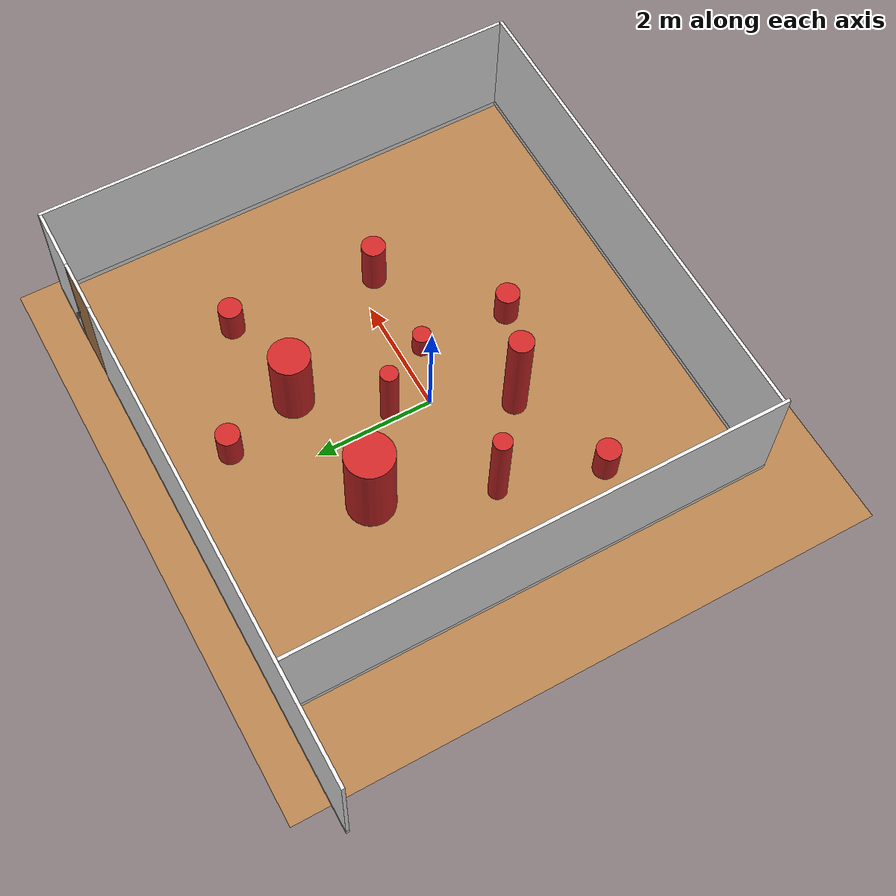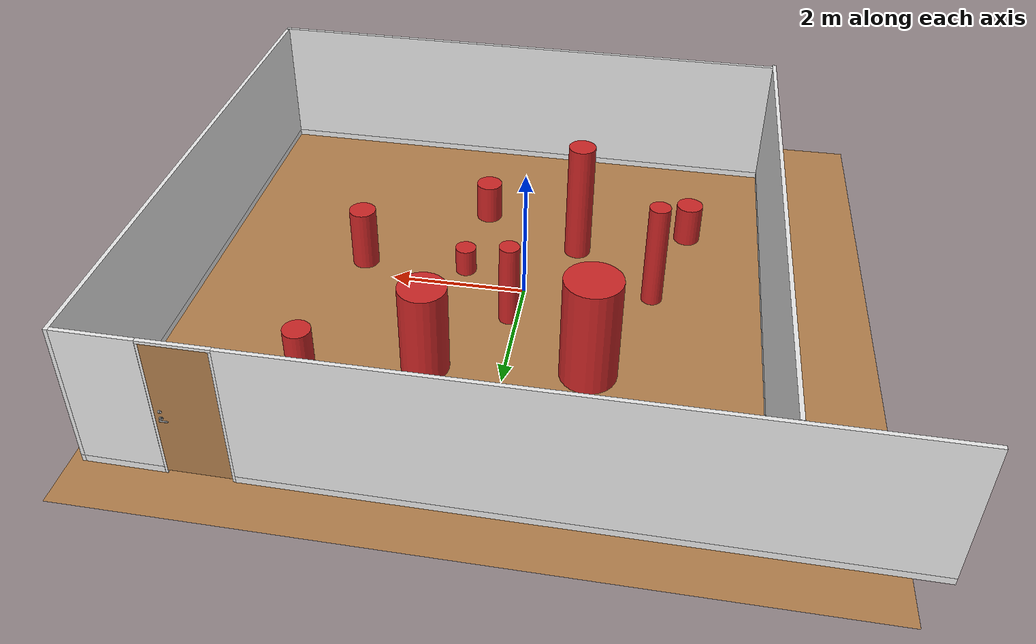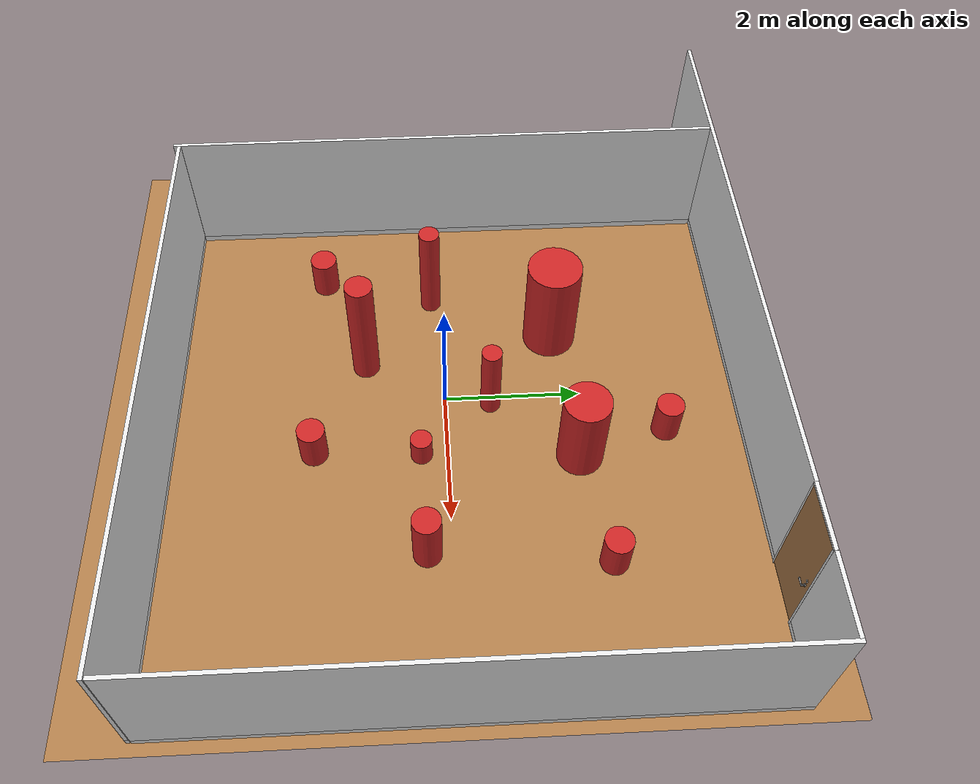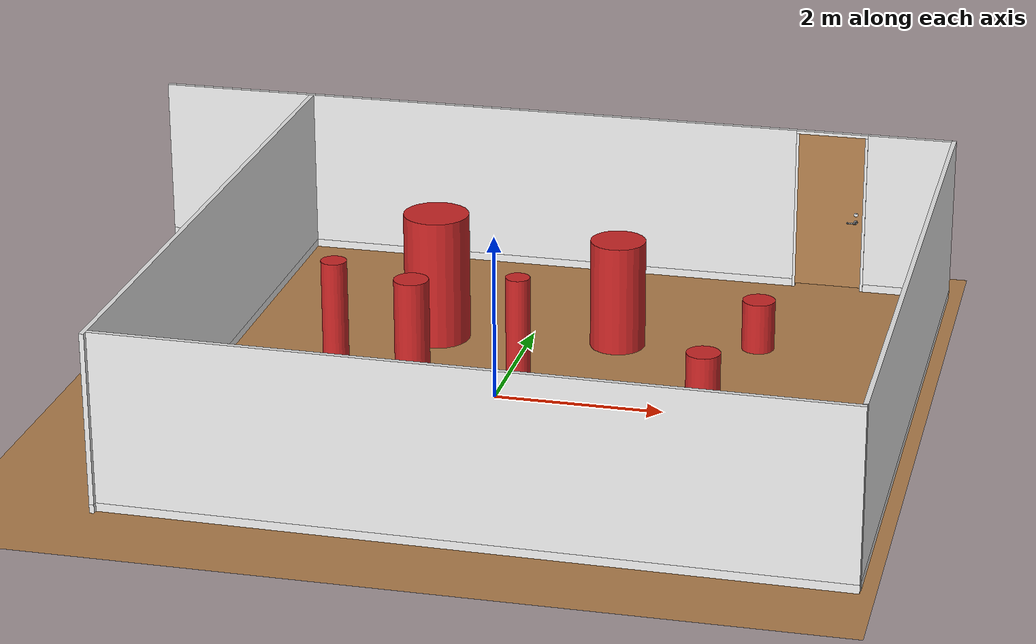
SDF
<sdf version="1.6">
 <world name="default">
  <include><uri>model://sun</uri></include>
  <physics type="ode"/>
  <scene><ambient>0.4 0.4 0.4 1</ambient><background>0.7 0.7 0.7 1</background><shadows>0</shadows></scene>
  <model name="wrc_ground_plane">
   <static>1</static>
   <link name="link">
    <collision name="collision">
     <geometry><plane><normal>0 0 1</normal><size>10 10</size></plane></geometry>
     <surface>
      <contact><collide_bitmask>65535</collide_bitmask></contact>
      <friction><ode><mu>100</mu><mu2>50</mu2></ode></friction>
     </surface>
    </collision>
    <visual name="visual">
     <cast_shadows>0</cast_shadows>
     <geometry><plane><normal>0 0 1</normal><size>10 10</size></plane></geometry>
     <material>
      <script><uri>model://wrc_ground_plane/materials/wood.material</uri><name>WRS/WoodFloor</name></script>
     </material>
    </visual>
   </link>
  </model>
  <magnetic_field>6e-06 2.3e-05 -4.2e-05</magnetic_field>
  <atmosphere type="adiabatic"/>
  <spherical_coordinates>
   <surface_model>EARTH_WGS84</surface_model>
   <latitude_deg>0</latitude_deg>
   <longitude_deg>0</longitude_deg>
   <elevation>0</elevation>
   <heading_deg>0</heading_deg>
  </spherical_coordinates>
  <model name="full_wall_55_8295_2090">
   <link name="link">
    <inertial>
     <mass>50</mass>
     <inertia><ixx>1</ixx><ixy>0</ixy><ixz>0</ixz><iyy>1</iyy><iyz>0</iyz><izz>1</izz></inertia>
    </inertial>
    <visual name="bottom_frame">
     <pose>0 0 0.05 0 -0 0</pose>
     <geometry><box><size>0.055 8.295 0.1</size></box></geometry>
     <material>
      <script><uri>model://base_materials/color/scripts</uri><name>hsr_color/white</name></script>
     </material>
    </visual>
    <collision name="collision_bottom_frame">
     <pose>0 0 0.05 0 -0 0</pose>
     <geometry><box><size>0.055 8.295 0.1</size></box></geometry>
    </collision>
    <visual name="wall">
     <pose>0 0 1.095 0 -0 0</pose>
     <geometry><box><size>0.055 8.295 1.99</size></box></geometry>
     <material>
      <script>
       <uri>model://base_materials/wall/scripts</uri>
       <uri>model://base_materials/wall/textures</uri>
       <name>wall/white_noise</name>
      </script>
     </material>
    </visual>
    <collision name="collision_wall">
     <pose>0 0 1.095 0 -0 0</pose>
     <geometry><box><size>0.055 8.295 1.99</size></box></geometry>
    </collision>
    <velocity_decay><linear>0</linear><angular>0</angular></velocity_decay>
   </link>
   <static>1</static>
   <pose>4.81252 0.172211 0 0 -0 0</pose>
  </model>
  <model name="full_wall_55_8295_2090_clone">
   <link name="link">
    <inertial>
     <mass>50</mass>
     <inertia><ixx>1</ixx><ixy>0</ixy><ixz>0</ixz><iyy>1</iyy><iyz>0</iyz><izz>1</izz></inertia>
    </inertial>
    <visual name="bottom_frame">
     <pose>0 0 0.05 0 -0 0</pose>
     <geometry><box><size>0.055 8.295 0.1</size></box></geometry>
     <material>
      <script><uri>model://base_materials/color/scripts</uri><name>hsr_color/white</name></script>
     </material>
    </visual>
    <collision name="collision_bottom_frame">
     <pose>0 0 0.05 0 -0 0</pose>
     <geometry><box><size>0.055 8.295 0.1</size></box></geometry>
    </collision>
    <visual name="wall">
     <pose>0 0 1.095 0 -0 0</pose>
     <geometry><box><size>0.055 8.295 1.99</size></box></geometry>
     <material>
      <script>
       <uri>model://base_materials/wall/scripts</uri>
       <uri>model://base_materials/wall/textures</uri>
       <name>wall/white_noise</name>
      </script>
     </material>
    </visual>
    <collision name="collision_wall">
     <pose>0 0 1.095 0 -0 0</pose>
     <geometry><box><size>0.055 8.295 1.99</size></box></geometry>
    </collision>
    <velocity_decay><linear>0</linear><angular>0</angular></velocity_decay>
   </link>
   <static>1</static>
   <pose>-1.30065 4.31927 0 0 0 -1.57365</pose>
  </model>
  <model name="full_wall_55_900_2090">
   <link name="link">
    <inertial>
     <mass>50</mass>
     <inertia><ixx>1</ixx><ixy>0</ixy><ixz>0</ixz><iyy>1</iyy><iyz>0</iyz><izz>1</izz></inertia>
    </inertial>
    <visual name="bottom_frame">
     <pose>0 0 0.05 0 -0 0</pose>
     <geometry><box><size>0.055 1.04 0.1</size></box></geometry>
     <material>
      <script><uri>model://base_materials/color/scripts</uri><name>hsr_color/white</name></script>
     </material>
    </visual>
    <collision name="collision_bottom_frame">
     <pose>0 0 0.05 0 -0 0</pose>
     <geometry><box><size>0.055 1.04 0.1</size></box></geometry>
    </collision>
    <visual name="wall">
     <pose>0 0 1.095 0 -0 0</pose>
     <geometry><box><size>0.055 1.04 1.99</size></box></geometry>
     <material>
      <script>
       <uri>model://base_materials/wall/scripts</uri>
       <uri>model://base_materials/wall/textures</uri>
       <name>wall/white_noise</name>
      </script>
     </material>
    </visual>
    <collision name="collision_wall">
     <pose>0 0 1.095 0 -0 0</pose>
     <geometry><box><size>0.055 1.04 1.99</size></box></geometry>
    </collision>
    <velocity_decay><linear>0</linear><angular>0</angular></velocity_decay>
   </link>
   <static>1</static>
   <pose>4.26859 4.29665 0 0 -0 1.56253</pose>
  </model>
  <model name="full_wall_55_8295_2090_0">
   <link name="link">
    <inertial>
     <mass>50</mass>
     <inertia><ixx>1</ixx><ixy>0</ixy><ixz>0</ixz><iyy>1</iyy><iyz>0</iyz><izz>1</izz></inertia>
    </inertial>
    <visual name="bottom_frame">
     <pose>0 0 0.05 0 -0 0</pose>
     <geometry><box><size>0.055 8.295 0.1</size></box></geometry>
     <material>
      <script><uri>model://base_materials/color/scripts</uri><name>hsr_color/white</name></script>
     </material>
    </visual>
    <collision name="collision_bottom_frame">
     <pose>0 0 0.05 0 -0 0</pose>
     <geometry><box><size>0.055 8.295 0.1</size></box></geometry>
    </collision>
    <visual name="wall">
     <pose>0 0 1.095 0 -0 0</pose>
     <geometry><box><size>0.055 8.295 1.99</size></box></geometry>
     <material>
      <script>
       <uri>model://base_materials/wall/scripts</uri>
       <uri>model://base_materials/wall/textures</uri>
       <name>wall/white_noise</name>
      </script>
     </material>
    </visual>
    <collision name="collision_wall">
     <pose>0 0 1.095 0 -0 0</pose>
     <geometry><box><size>0.055 8.295 1.99</size></box></geometry>
    </collision>
    <velocity_decay><linear>0</linear><angular>0</angular></velocity_decay>
   </link>
   <static>1</static>
   <pose>0.687285 -3.96616 0 0 0 -1.58277</pose>
  </model>
  <model name="full_wall_55_8295_2090_1">
   <link name="link">
    <inertial>
     <mass>50</mass>
     <inertia><ixx>1</ixx><ixy>0</ixy><ixz>0</ixz><iyy>1</iyy><iyz>0</iyz><izz>1</izz></inertia>
    </inertial>
    <visual name="bottom_frame">
     <pose>0 0 0.05 0 -0 0</pose>
     <geometry><box><size>0.055 8.295 0.1</size></box></geometry>
     <material>
      <script><uri>model://base_materials/color/scripts</uri><name>hsr_color/white</name></script>
     </material>
    </visual>
    <collision name="collision_bottom_frame">
     <pose>0 0 0.05 0 -0 0</pose>
     <geometry><box><size>0.055 8.295 0.1</size></box></geometry>
    </collision>
    <visual name="wall">
     <pose>0 0 1.095 0 -0 0</pose>
     <geometry><box><size>0.055 8.295 1.99</size></box></geometry>
     <material>
      <script>
       <uri>model://base_materials/wall/scripts</uri>
       <uri>model://base_materials/wall/textures</uri>
       <name>wall/white_noise</name>
      </script>
     </material>
    </visual>
    <collision name="collision_wall">
     <pose>0 0 1.095 0 -0 0</pose>
     <geometry><box><size>0.055 8.295 1.99</size></box></geometry>
    </collision>
    <velocity_decay><linear>0</linear><angular>0</angular></velocity_decay>
   </link>
   <static>1</static>
   <pose>-3.4877 0.144746 0 0 -0 0</pose>
  </model>
  <model name="door_55_900_2090">
   <link name="link">
    <pose>0 0.45 0 0 -0 0</pose>
    <inertial>
     <mass>50</mass>
     <inertia><ixx>1</ixx><ixy>0</ixy><ixz>0</ixz><iyy>1</iyy><iyz>0</iyz><izz>1</izz></inertia>
    </inertial>
    <visual name="door">
     <pose>0 0 1.05 0 -0 0</pose>
     <geometry><box><size>0.055 0.83 2</size></box></geometry>
     <material>
      <script><uri>model://base_materials/wood/scripts/wood.material</uri><name>base_materials/wood</name></script>
     </material>
    </visual>
    <collision name="collision_door">
     <pose>0 0 1.05 0 -0 0</pose>
     <geometry><box><size>0.055 0.83 2</size></box></geometry>
    </collision>
    <visual name="right_frame">
     <pose>0 0.4325 1.025 0 -0 0</pose>
     <geometry><box><size>0.055 0.035 2.05</size></box></geometry>
     <material>
      <script><uri>model://base_materials/color/scripts</uri><name>hsr_color/white</name></script>
     </material>
    </visual>
    <collision name="collision_right_frame">
     <pose>0 0.4325 1.025 0 -0 0</pose>
     <geometry><box><size>0.055 0.035 2.05</size></box></geometry>
    </collision>
    <visual name="left_frame">
     <pose>0 -0.4325 1.025 0 -0 0</pose>
     <geometry><box><size>0.055 0.035 2.05</size></box></geometry>
     <material>
      <script><uri>model://base_materials/color/scripts</uri><name>hsr_color/white</name></script>
     </material>
    </visual>
    <collision name="collision_left_frame">
     <pose>0 -0.4325 1.025 0 -0 0</pose>
     <geometry><box><size>0.055 0.035 2.05</size></box></geometry>
    </collision>
    <visual name="top_frame">
     <pose>0 0 2.07 0 -0 0</pose>
     <geometry><box><size>0.055 0.9 0.04</size></box></geometry>
     <material>
      <script><uri>model://base_materials/color/scripts</uri><name>hsr_color/white</name></script>
     </material>
    </visual>
    <collision name="collision_top_frame">
     <pose>0 0 2.07 0 -0 0</pose>
     <geometry><box><size>0.055 0.9 0.04</size></box></geometry>
    </collision>
    <visual name="handle_front">
     <pose>0.0775 0.285 0.93 1.5708 -0 0</pose>
     <geometry><cylinder><radius>0.01</radius><length>0.1</length></cylinder></geometry>
     <material>
      <script><uri>model://base_materials/color/scripts</uri><name>hsr_color/grey</name></script>
     </material>
    </visual>
    <collision name="collision_handle_front">
     <pose>0.0775 0.285 0.93 1.5708 -0 0</pose>
     <geometry><cylinder><radius>0.01</radius><length>0.1</length></cylinder></geometry>
    </collision>
    <visual name="handle_back">
     <pose>-0.0775 0.285 0.93 1.5708 -0 0</pose>
     <geometry><cylinder><radius>0.01</radius><length>0.1</length></cylinder></geometry>
     <material>
      <script><uri>model://base_materials/color/scripts</uri><name>hsr_color/grey</name></script>
     </material>
    </visual>
    <collision name="collision_handle_back">
     <pose>-0.0775 0.285 0.93 1.5708 -0 0</pose>
     <geometry><cylinder><radius>0.01</radius><length>0.1</length></cylinder></geometry>
    </collision>
    <visual name="handle_center1">
     <pose>0 0.335 0.93 3.14159 1.57079 3.14159</pose>
     <geometry><cylinder><radius>0.01</radius><length>0.155</length></cylinder></geometry>
     <material>
      <script><uri>model://base_materials/color/scripts</uri><name>hsr_color/grey</name></script>
     </material>
    </visual>
    <collision name="collision_center1">
     <pose>0 0.335 0.93 3.14159 1.57079 3.14159</pose>
     <geometry><cylinder><radius>0.01</radius><length>0.155</length></cylinder></geometry>
    </collision>
    <visual name="handle_center2">
     <pose>0 0.335 0.93 3.14159 1.57079 3.14159</pose>
     <geometry><cylinder><radius>0.025</radius><length>0.075</length></cylinder></geometry>
     <material>
      <script><uri>model://base_materials/color/scripts</uri><name>hsr_color/grey</name></script>
     </material>
    </visual>
    <collision name="collision_center1">
     <pose>0 0.335 0.93 3.14159 1.57079 3.14159</pose>
     <geometry><cylinder><radius>0.025</radius><length>0.075</length></cylinder></geometry>
    </collision>
    <visual name="handle_front_right_corner">
     <pose>0.0775 0.335 0.93 0 -0 0</pose>
     <geometry><sphere><radius>0.01</radius></sphere></geometry>
     <material>
      <script><uri>model://base_materials/color/scripts</uri><name>hsr_color/grey</name></script>
     </material>
    </visual>
    <collision name="collision_handle_front_right_corner">
     <pose>0.0775 0.335 0.93 0 -0 0</pose>
     <geometry><sphere><radius>0.01</radius></sphere></geometry>
    </collision>
    <visual name="handle_front_left_corner">
     <pose>0.0775 0.235 0.93 0 -0 0</pose>
     <geometry><sphere><radius>0.01</radius></sphere></geometry>
     <material>
      <script><uri>model://base_materials/color/scripts</uri><name>hsr_color/grey</name></script>
     </material>
    </visual>
    <collision name="collision_handle_front_left_corner">
     <pose>0.0775 0.235 0.93 0 -0 0</pose>
     <geometry><sphere><radius>0.01</radius></sphere></geometry>
    </collision>
    <visual name="handle_back_right_corner">
     <pose>-0.0775 0.335 0.93 0 -0 0</pose>
     <geometry><sphere><radius>0.01</radius></sphere></geometry>
     <material>
      <script><uri>model://base_materials/color/scripts</uri><name>hsr_color/grey</name></script>
     </material>
    </visual>
    <collision name="collision_handle_back_right_corner">
     <pose>-0.0775 0.335 0.93 0 -0 0</pose>
     <geometry><sphere><radius>0.01</radius></sphere></geometry>
    </collision>
    <visual name="handle_back_left_corner">
     <pose>-0.0775 0.235 0.93 0 -0 0</pose>
     <geometry><sphere><radius>0.01</radius></sphere></geometry>
     <material>
      <script><uri>model://base_materials/color/scripts</uri><name>hsr_color/white</name></script>
     </material>
    </visual>
    <collision name="collision_handle_back_left_corner">
     <pose>-0.0775 0.235 0.93 0 -0 0</pose>
     <geometry><sphere><radius>0.01</radius></sphere></geometry>
    </collision>
    <visual name="handle_lock1">
     <pose>0 0.335 1.03 0 -0 0</pose>
     <geometry><box><size>0.075 0.005 0.04</size></box></geometry>
     <material>
      <script><uri>model://base_materials/color/scripts</uri><name>hsr_color/white</name></script>
     </material>
    </visual>
    <collision name="collision_handle_lock1">
     <pose>0 0.335 1.03 0 -0 0</pose>
     <geometry><box><size>0.075 0.005 0.04</size></box></geometry>
    </collision>
    <visual name="handle_lock2">
     <pose>0 0.335 1.03 3.14159 1.57079 3.14159</pose>
     <geometry><cylinder><radius>0.025</radius><length>0.065</length></cylinder></geometry>
     <material>
      <script><uri>model://base_materials/color/scripts</uri><name>hsr_color/white</name></script>
     </material>
    </visual>
    <collision name="collision_handle_lock1">
     <pose>0 0.335 1.03 3.14159 1.57079 3.14159</pose>
     <geometry><cylinder><radius>0.025</radius><length>0.065</length></cylinder></geometry>
    </collision>
    <velocity_decay><linear>0</linear><angular>0</angular></velocity_decay>
   </link>
   <static>1</static>
   <pose>2.84759 4.30281 0 0 0 -1.57383</pose>
  </model>
  <model name="unit_cylinder_0">
   <link name="link">
    <inertial>
     <mass>1</mass>
     <inertia><ixx>0.145833</ixx><ixy>0</ixy><ixz>0</ixz><iyy>0.145833</iyy><iyz>0</iyz><izz>0.125</izz></inertia>
    </inertial>
    <visual name="visual">
     <geometry><cylinder><radius>0.399602</radius><length>1.59857</length></cylinder></geometry>
     <material>
      <script><name>Gazebo/Red</name><uri>file://media/materials/scripts/gazebo.material</uri></script>
      <shader type="pixel"/>
     </material>
     <cast_shadows>0</cast_shadows>
    </visual>
    <collision name="collision">
     <geometry><cylinder><radius>0.399602</radius><length>1.59857</length></cylinder></geometry>
     <surface>
      <friction>
       <ode><mu>1</mu><mu2>1</mu2><fdir1>0 0 0</fdir1><slip1>0</slip1><slip2>0</slip2></ode>
       <torsional>
        <coefficient>1</coefficient>
        <patch_radius>0</patch_radius>
        <surface_radius>0</surface_radius>
        <use_patch_radius>1</use_patch_radius>
        <ode><slip>0</slip></ode>
       </torsional>
      </friction>
      <bounce><restitution_coefficient>0</restitution_coefficient><threshold>1e+06</threshold></bounce>
      <contact>
       <collide_without_contact>0</collide_without_contact>
       <collide_without_contact_bitmask>1</collide_without_contact_bitmask>
       <collide_bitmask>1</collide_bitmask>
       <ode>
        <soft_cfm>0</soft_cfm>
        <soft_erp>0.2</soft_erp>
        <kp>1e+13</kp>
        <kd>1</kd>
        <max_vel>0.01</max_vel>
        <min_depth>0</min_depth>
       </ode>
       <bullet>
        <split_impulse>1</split_impulse>
        <split_impulse_penetration_threshold>-0.01</split_impulse_penetration_threshold>
        <soft_cfm>0</soft_cfm>
        <soft_erp>0.2</soft_erp>
        <kp>1e+13</kp>
        <kd>1</kd>
       </bullet>
      </contact>
     </surface>
    </collision>
   </link>
   <static>0</static>
   <pose>-1.12873 1.66165 0.79928 0 -0 1.2e-05</pose>
  </model>
  <model name="unit_cylinder_1">
   <link name="link">
    <inertial>
     <mass>1</mass>
     <inertia><ixx>0.145833</ixx><ixy>0</ixy><ixz>0</ixz><iyy>0.145833</iyy><iyz>0</iyz><izz>0.125</izz></inertia>
    </inertial>
    <visual name="visual">
     <geometry><cylinder><radius>0.152824</radius><length>1.60987</length></cylinder></geometry>
     <material>
      <script><name>Gazebo/Red</name><uri>file://media/materials/scripts/gazebo.material</uri></script>
      <shader type="pixel"/>
     </material>
     <cast_shadows>0</cast_shadows>
    </visual>
    <collision name="collision">
     <geometry><cylinder><radius>0.152824</radius><length>1.60987</length></cylinder></geometry>
     <surface>
      <friction>
       <ode><mu>1</mu><mu2>1</mu2><fdir1>0 0 0</fdir1><slip1>0</slip1><slip2>0</slip2></ode>
       <torsional>
        <coefficient>1</coefficient>
        <patch_radius>0</patch_radius>
        <surface_radius>0</surface_radius>
        <use_patch_radius>1</use_patch_radius>
        <ode><slip>0</slip></ode>
       </torsional>
      </friction>
      <bounce><restitution_coefficient>0</restitution_coefficient><threshold>1e+06</threshold></bounce>
      <contact>
       <collide_without_contact>0</collide_without_contact>
       <collide_without_contact_bitmask>1</collide_without_contact_bitmask>
       <collide_bitmask>1</collide_bitmask>
       <ode>
        <soft_cfm>0</soft_cfm>
        <soft_erp>0.2</soft_erp>
        <kp>1e+13</kp>
        <kd>1</kd>
        <max_vel>0.01</max_vel>
        <min_depth>0</min_depth>
       </ode>
       <bullet>
        <split_impulse>1</split_impulse>
        <split_impulse_penetration_threshold>-0.01</split_impulse_penetration_threshold>
        <soft_cfm>0</soft_cfm>
        <soft_erp>0.2</soft_erp>
        <kp>1e+13</kp>
        <kd>1</kd>
       </bullet>
      </contact>
     </surface>
    </collision>
   </link>
   <static>0</static>
   <pose>-1.87826 -0.151344 0.80493 -0 -0 -0.00015</pose>
  </model>
  <model name="unit_cylinder_2">
   <link name="link">
    <inertial>
     <mass>1</mass>
     <inertia><ixx>0.145833</ixx><ixy>0</ixy><ixz>0</ixz><iyy>0.145833</iyy><iyz>0</iyz><izz>0.125</izz></inertia>
    </inertial>
    <visual name="visual">
     <geometry><cylinder><radius>0.335498</radius><length>1.35309</length></cylinder></geometry>
     <material>
      <script><name>Gazebo/Red</name><uri>file://media/materials/scripts/gazebo.material</uri></script>
      <shader type="pixel"/>
     </material>
     <cast_shadows>0</cast_shadows>
    </visual>
    <collision name="collision">
     <geometry><cylinder><radius>0.335498</radius><length>1.35309</length></cylinder></geometry>
     <surface>
      <friction>
       <ode><mu>1</mu><mu2>1</mu2><fdir1>0 0 0</fdir1><slip1>0</slip1><slip2>0</slip2></ode>
       <torsional>
        <coefficient>1</coefficient>
        <patch_radius>0</patch_radius>
        <surface_radius>0</surface_radius>
        <use_patch_radius>1</use_patch_radius>
        <ode><slip>0</slip></ode>
       </torsional>
      </friction>
      <bounce><restitution_coefficient>0</restitution_coefficient><threshold>1e+06</threshold></bounce>
      <contact>
       <collide_without_contact>0</collide_without_contact>
       <collide_without_contact_bitmask>1</collide_without_contact_bitmask>
       <collide_bitmask>1</collide_bitmask>
       <ode>
        <soft_cfm>0</soft_cfm>
        <soft_erp>0.2</soft_erp>
        <kp>1e+13</kp>
        <kd>1</kd>
        <max_vel>0.01</max_vel>
        <min_depth>0</min_depth>
       </ode>
       <bullet>
        <split_impulse>1</split_impulse>
        <split_impulse_penetration_threshold>-0.01</split_impulse_penetration_threshold>
        <soft_cfm>0</soft_cfm>
        <soft_erp>0.2</soft_erp>
        <kp>1e+13</kp>
        <kd>1</kd>
       </bullet>
      </contact>
     </surface>
    </collision>
   </link>
   <static>0</static>
   <pose>1.07206 1.88769 0.676536 0 -0 0</pose>
  </model>
  <model name="unit_cylinder_3">
   <link name="link">
    <inertial>
     <mass>1</mass>
     <inertia><ixx>0.145833</ixx><ixy>0</ixy><ixz>0</ixz><iyy>0.145833</iyy><iyz>0</iyz><izz>0.125</izz></inertia>
    </inertial>
    <visual name="visual">
     <geometry><cylinder><radius>0.155954</radius><length>0.421588</length></cylinder></geometry>
     <material>
      <script><name>Gazebo/Red</name><uri>file://media/materials/scripts/gazebo.material</uri></script>
      <shader type="pixel"/>
     </material>
     <cast_shadows>0</cast_shadows>
    </visual>
    <collision name="collision">
     <geometry><cylinder><radius>0.155954</radius><length>0.421588</length></cylinder></geometry>
     <surface>
      <friction>
       <ode><mu>1</mu><mu2>1</mu2><fdir1>0 0 0</fdir1><slip1>0</slip1><slip2>0</slip2></ode>
       <torsional>
        <coefficient>1</coefficient>
        <patch_radius>0</patch_radius>
        <surface_radius>0</surface_radius>
        <use_patch_radius>1</use_patch_radius>
        <ode><slip>0</slip></ode>
       </torsional>
      </friction>
      <bounce><restitution_coefficient>0</restitution_coefficient><threshold>1e+06</threshold></bounce>
      <contact>
       <collide_without_contact>0</collide_without_contact>
       <collide_without_contact_bitmask>1</collide_without_contact_bitmask>
       <collide_bitmask>1</collide_bitmask>
       <ode>
        <soft_cfm>0</soft_cfm>
        <soft_erp>0.2</soft_erp>
        <kp>1e+13</kp>
        <kd>1</kd>
        <max_vel>0.01</max_vel>
        <min_depth>0</min_depth>
       </ode>
       <bullet>
        <split_impulse>1</split_impulse>
        <split_impulse_penetration_threshold>-0.01</split_impulse_penetration_threshold>
        <soft_cfm>0</soft_cfm>
        <soft_erp>0.2</soft_erp>
        <kp>1e+13</kp>
        <kd>1</kd>
       </bullet>
      </contact>
     </surface>
    </collision>
   </link>
   <static>0</static>
   <pose>0.954456 -0.376954 0.210793 -2e-06 2e-06 1e-06</pose>
  </model>
  <model name="unit_cylinder_4">
   <link name="link">
    <inertial>
     <mass>1</mass>
     <inertia><ixx>0.145833</ixx><ixy>0</ixy><ixz>0</ixz><iyy>0.145833</iyy><iyz>0</iyz><izz>0.125</izz></inertia>
    </inertial>
    <visual name="visual">
     <geometry><cylinder><radius>0.199818</radius><length>1.87409</length></cylinder></geometry>
     <material>
      <script><name>Gazebo/Red</name><uri>file://media/materials/scripts/gazebo.material</uri></script>
      <shader type="pixel"/>
     </material>
     <cast_shadows>0</cast_shadows>
    </visual>
    <collision name="collision">
     <geometry><cylinder><radius>0.199818</radius><length>1.87409</length></cylinder></geometry>
     <surface>
      <friction>
       <ode><mu>1</mu><mu2>1</mu2><fdir1>0 0 0</fdir1><slip1>0</slip1><slip2>0</slip2></ode>
       <torsional>
        <coefficient>1</coefficient>
        <patch_radius>0</patch_radius>
        <surface_radius>0</surface_radius>
        <use_patch_radius>1</use_patch_radius>
        <ode><slip>0</slip></ode>
       </torsional>
      </friction>
      <bounce><restitution_coefficient>0</restitution_coefficient><threshold>1e+06</threshold></bounce>
      <contact>
       <collide_without_contact>0</collide_without_contact>
       <collide_without_contact_bitmask>1</collide_without_contact_bitmask>
       <collide_bitmask>1</collide_bitmask>
       <ode>
        <soft_cfm>0</soft_cfm>
        <soft_erp>0.2</soft_erp>
        <kp>1e+13</kp>
        <kd>1</kd>
        <max_vel>0.01</max_vel>
        <min_depth>0</min_depth>
       </ode>
       <bullet>
        <split_impulse>1</split_impulse>
        <split_impulse_penetration_threshold>-0.01</split_impulse_penetration_threshold>
        <soft_cfm>0</soft_cfm>
        <soft_erp>0.2</soft_erp>
        <kp>1e+13</kp>
        <kd>1</kd>
       </bullet>
      </contact>
     </surface>
    </collision>
   </link>
   <static>0</static>
   <pose>-0.663952 -1.17271 0.937041 0 0 -2e-06</pose>
  </model>
  <model name="unit_cylinder_5">
   <link name="link">
    <inertial>
     <mass>1</mass>
     <inertia><ixx>0.145833</ixx><ixy>0</ixy><ixz>0</ixz><iyy>0.145833</iyy><iyz>0</iyz><izz>0.125</izz></inertia>
    </inertial>
    <visual name="visual">
     <geometry><cylinder><radius>0.146496</radius><length>1.26347</length></cylinder></geometry>
     <material>
      <script><name>Gazebo/Red</name><uri>file://media/materials/scripts/gazebo.material</uri></script>
      <shader type="pixel"/>
     </material>
     <cast_shadows>0</cast_shadows>
    </visual>
    <collision name="collision">
     <geometry><cylinder><radius>0.146496</radius><length>1.26347</length></cylinder></geometry>
     <surface>
      <friction>
       <ode><mu>1</mu><mu2>1</mu2><fdir1>0 0 0</fdir1><slip1>0</slip1><slip2>0</slip2></ode>
       <torsional>
        <coefficient>1</coefficient>
        <patch_radius>0</patch_radius>
        <surface_radius>0</surface_radius>
        <use_patch_radius>1</use_patch_radius>
        <ode><slip>0</slip></ode>
       </torsional>
      </friction>
      <bounce><restitution_coefficient>0</restitution_coefficient><threshold>1e+06</threshold></bounce>
      <contact>
       <collide_without_contact>0</collide_without_contact>
       <collide_without_contact_bitmask>1</collide_without_contact_bitmask>
       <collide_bitmask>1</collide_bitmask>
       <ode>
        <soft_cfm>0</soft_cfm>
        <soft_erp>0.2</soft_erp>
        <kp>1e+13</kp>
        <kd>1</kd>
        <max_vel>0.01</max_vel>
        <min_depth>0</min_depth>
       </ode>
       <bullet>
        <split_impulse>1</split_impulse>
        <split_impulse_penetration_threshold>-0.01</split_impulse_penetration_threshold>
        <soft_cfm>0</soft_cfm>
        <soft_erp>0.2</soft_erp>
        <kp>1e+13</kp>
        <kd>1</kd>
       </bullet>
      </contact>
     </surface>
    </collision>
   </link>
   <static>0</static>
   <pose>0.121096 0.664123 0.631727 -0 -0 -0.000261</pose>
  </model>
  <model name="unit_cylinder_3_clone">
   <link name="link">
    <inertial>
     <mass>1</mass>
     <inertia><ixx>0.145833</ixx><ixy>0</ixy><ixz>0</ixz><iyy>0.145833</iyy><iyz>0</iyz><izz>0.125</izz></inertia>
    </inertial>
    <visual name="visual">
     <geometry><cylinder><radius>0.199818</radius><length>0.942789</length></cylinder></geometry>
     <material>
      <script><name>Gazebo/Red</name><uri>file://media/materials/scripts/gazebo.material</uri></script>
      <shader type="pixel"/>
     </material>
     <cast_shadows>0</cast_shadows>
    </visual>
    <collision name="collision">
     <geometry><cylinder><radius>0.199818</radius><length>0.942789</length></cylinder></geometry>
     <surface>
      <friction>
       <ode><mu>1</mu><mu2>1</mu2><fdir1>0 0 0</fdir1><slip1>0</slip1><slip2>0</slip2></ode>
       <torsional>
        <coefficient>1</coefficient>
        <patch_radius>0</patch_radius>
        <surface_radius>0</surface_radius>
        <use_patch_radius>1</use_patch_radius>
        <ode><slip>0</slip></ode>
       </torsional>
      </friction>
      <bounce><restitution_coefficient>0</restitution_coefficient><threshold>1e+06</threshold></bounce>
      <contact>
       <collide_without_contact>0</collide_without_contact>
       <collide_without_contact_bitmask>1</collide_without_contact_bitmask>
       <collide_bitmask>1</collide_bitmask>
       <ode>
        <soft_cfm>0</soft_cfm>
        <soft_erp>0.2</soft_erp>
        <kp>1e+13</kp>
        <kd>1</kd>
        <max_vel>0.01</max_vel>
        <min_depth>0</min_depth>
       </ode>
       <bullet>
        <split_impulse>1</split_impulse>
        <split_impulse_penetration_threshold>-0.01</split_impulse_penetration_threshold>
        <soft_cfm>0</soft_cfm>
        <soft_erp>0.2</soft_erp>
        <kp>1e+13</kp>
        <kd>1</kd>
       </bullet>
      </contact>
     </surface>
    </collision>
   </link>
   <static>0</static>
   <pose>2.52367 -0.340921 0.471393 0 0 -2.8e-05</pose>
  </model>
  <model name="unit_cylinder_3_clone_0">
   <link name="link">
    <inertial>
     <mass>1</mass>
     <inertia><ixx>0.145833</ixx><ixy>0</ixy><ixz>0</ixz><iyy>0.145833</iyy><iyz>0</iyz><izz>0.125</izz></inertia>
    </inertial>
    <visual name="visual">
     <geometry><cylinder><radius>0.199818</radius><length>0.6279</length></cylinder></geometry>
     <material>
      <script><name>Gazebo/Red</name><uri>file://media/materials/scripts/gazebo.material</uri></script>
      <shader type="pixel"/>
     </material>
     <cast_shadows>0</cast_shadows>
    </visual>
    <collision name="collision">
     <geometry><cylinder><radius>0.199818</radius><length>0.6279</length></cylinder></geometry>
     <surface>
      <friction>
       <ode><mu>1</mu><mu2>1</mu2><fdir1>0 0 0</fdir1><slip1>0</slip1><slip2>0</slip2></ode>
       <torsional>
        <coefficient>1</coefficient>
        <patch_radius>0</patch_radius>
        <surface_radius>0</surface_radius>
        <use_patch_radius>1</use_patch_radius>
        <ode><slip>0</slip></ode>
       </torsional>
      </friction>
      <bounce><restitution_coefficient>0</restitution_coefficient><threshold>1e+06</threshold></bounce>
      <contact>
       <collide_without_contact>0</collide_without_contact>
       <collide_without_contact_bitmask>1</collide_without_contact_bitmask>
       <collide_bitmask>1</collide_bitmask>
       <ode>
        <soft_cfm>0</soft_cfm>
        <soft_erp>0.2</soft_erp>
        <kp>1e+13</kp>
        <kd>1</kd>
        <max_vel>0.01</max_vel>
        <min_depth>0</min_depth>
       </ode>
       <bullet>
        <split_impulse>1</split_impulse>
        <split_impulse_penetration_threshold>-0.01</split_impulse_penetration_threshold>
        <soft_cfm>0</soft_cfm>
        <soft_erp>0.2</soft_erp>
        <kp>1e+13</kp>
        <kd>1</kd>
       </bullet>
      </contact>
     </surface>
    </collision>
   </link>
   <static>0</static>
   <pose>2.75713 2.15561 0.313948 -1e-06 -1e-06 1e-06</pose>
  </model>
  <model name="unit_cylinder_3_clone_1">
   <link name="link">
    <inertial>
     <mass>1</mass>
     <inertia><ixx>0.145833</ixx><ixy>0</ixy><ixz>0</ixz><iyy>0.145833</iyy><iyz>0</iyz><izz>0.125</izz></inertia>
    </inertial>
    <visual name="visual">
     <geometry><cylinder><radius>0.199818</radius><length>0.6279</length></cylinder></geometry>
     <material>
      <script><name>Gazebo/Red</name><uri>file://media/materials/scripts/gazebo.material</uri></script>
      <shader type="pixel"/>
     </material>
     <cast_shadows>0</cast_shadows>
    </visual>
    <collision name="collision">
     <geometry><cylinder><radius>0.199818</radius><length>0.6279</length></cylinder></geometry>
     <surface>
      <friction>
       <ode><mu>1</mu><mu2>1</mu2><fdir1>0 0 0</fdir1><slip1>0</slip1><slip2>0</slip2></ode>
       <torsional>
        <coefficient>1</coefficient>
        <patch_radius>0</patch_radius>
        <surface_radius>0</surface_radius>
        <use_patch_radius>1</use_patch_radius>
        <ode><slip>0</slip></ode>
       </torsional>
      </friction>
      <bounce><restitution_coefficient>0</restitution_coefficient><threshold>1e+06</threshold></bounce>
      <contact>
       <collide_without_contact>0</collide_without_contact>
       <collide_without_contact_bitmask>1</collide_without_contact_bitmask>
       <collide_bitmask>1</collide_bitmask>
       <ode>
        <soft_cfm>0</soft_cfm>
        <soft_erp>0.2</soft_erp>
        <kp>1e+13</kp>
        <kd>1</kd>
        <max_vel>0.01</max_vel>
        <min_depth>0</min_depth>
       </ode>
       <bullet>
        <split_impulse>1</split_impulse>
        <split_impulse_penetration_threshold>-0.01</split_impulse_penetration_threshold>
        <soft_cfm>0</soft_cfm>
        <soft_erp>0.2</soft_erp>
        <kp>1e+13</kp>
        <kd>1</kd>
       </bullet>
      </contact>
     </surface>
    </collision>
   </link>
   <static>0</static>
   <pose>0.683808 3.18584 0.313948 -1e-06 -1e-06 1e-06</pose>
  </model>
  <model name="unit_cylinder_3_clone_2">
   <link name="link">
    <inertial>
     <mass>1</mass>
     <inertia><ixx>0.145833</ixx><ixy>0</ixy><ixz>0</ixz><iyy>0.145833</iyy><iyz>0</iyz><izz>0.125</izz></inertia>
    </inertial>
    <visual name="visual">
     <geometry><cylinder><radius>0.199818</radius><length>0.6279</length></cylinder></geometry>
     <material>
      <script><name>Gazebo/Red</name><uri>file://media/materials/scripts/gazebo.material</uri></script>
      <shader type="pixel"/>
     </material>
     <cast_shadows>0</cast_shadows>
    </visual>
    <collision name="collision">
     <geometry><cylinder><radius>0.199818</radius><length>0.6279</length></cylinder></geometry>
     <surface>
      <friction>
       <ode><mu>1</mu><mu2>1</mu2><fdir1>0 0 0</fdir1><slip1>0</slip1><slip2>0</slip2></ode>
       <torsional>
        <coefficient>1</coefficient>
        <patch_radius>0</patch_radius>
        <surface_radius>0</surface_radius>
        <use_patch_radius>1</use_patch_radius>
        <ode><slip>0</slip></ode>
       </torsional>
      </friction>
      <bounce><restitution_coefficient>0</restitution_coefficient><threshold>1e+06</threshold></bounce>
      <contact>
       <collide_without_contact>0</collide_without_contact>
       <collide_without_contact_bitmask>1</collide_without_contact_bitmask>
       <collide_bitmask>1</collide_bitmask>
       <ode>
        <soft_cfm>0</soft_cfm>
        <soft_erp>0.2</soft_erp>
        <kp>1e+13</kp>
        <kd>1</kd>
        <max_vel>0.01</max_vel>
        <min_depth>0</min_depth>
       </ode>
       <bullet>
        <split_impulse>1</split_impulse>
        <split_impulse_penetration_threshold>-0.01</split_impulse_penetration_threshold>
        <soft_cfm>0</soft_cfm>
        <soft_erp>0.2</soft_erp>
        <kp>1e+13</kp>
        <kd>1</kd>
       </bullet>
      </contact>
     </surface>
    </collision>
   </link>
   <static>0</static>
   <pose>-2.33805 -1.82055 0.313942 1e-06 1e-06 1e-06</pose>
  </model>
  <model name="unit_cylinder_3_clone_3">
   <link name="link">
    <inertial>
     <mass>1</mass>
     <inertia><ixx>0.145833</ixx><ixy>0</ixy><ixz>0</ixz><iyy>0.145833</iyy><iyz>0</iyz><izz>0.125</izz></inertia>
    </inertial>
    <visual name="visual">
     <geometry><cylinder><radius>0.199818</radius><length>0.6279</length></cylinder></geometry>
     <material>
      <script><name>Gazebo/Red</name><uri>file://media/materials/scripts/gazebo.material</uri></script>
      <shader type="pixel"/>
     </material>
     <cast_shadows>0</cast_shadows>
    </visual>
    <collision name="collision">
     <geometry><cylinder><radius>0.199818</radius><length>0.6279</length></cylinder></geometry>
     <surface>
      <friction>
       <ode><mu>1</mu><mu2>1</mu2><fdir1>0 0 0</fdir1><slip1>0</slip1><slip2>0</slip2></ode>
       <torsional>
        <coefficient>1</coefficient>
        <patch_radius>0</patch_radius>
        <surface_radius>0</surface_radius>
        <use_patch_radius>1</use_patch_radius>
        <ode><slip>0</slip></ode>
       </torsional>
      </friction>
      <bounce><restitution_coefficient>0</restitution_coefficient><threshold>1e+06</threshold></bounce>
      <contact>
       <collide_without_contact>0</collide_without_contact>
       <collide_without_contact_bitmask>1</collide_without_contact_bitmask>
       <collide_bitmask>1</collide_bitmask>
       <ode>
        <soft_cfm>0</soft_cfm>
        <soft_erp>0.2</soft_erp>
        <kp>1e+13</kp>
        <kd>1</kd>
        <max_vel>0.01</max_vel>
        <min_depth>0</min_depth>
       </ode>
       <bullet>
        <split_impulse>1</split_impulse>
        <split_impulse_penetration_threshold>-0.01</split_impulse_penetration_threshold>
        <soft_cfm>0</soft_cfm>
        <soft_erp>0.2</soft_erp>
        <kp>1e+13</kp>
        <kd>1</kd>
       </bullet>
      </contact>
     </surface>
    </collision>
   </link>
   <static>0</static>
   <pose>0.866571 -1.91539 0.313942 1e-06 1e-06 1e-06</pose>
  </model>
  <gravity>0 0 -9.8</gravity>
 </world>
</sdf>
